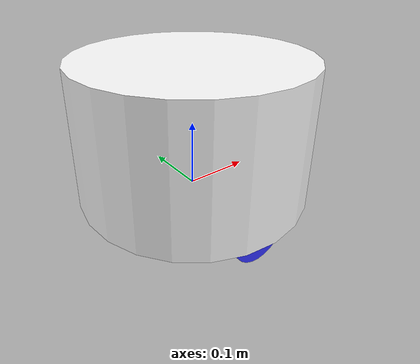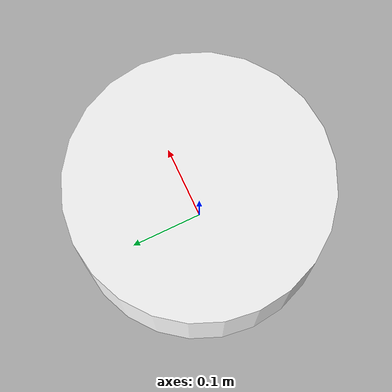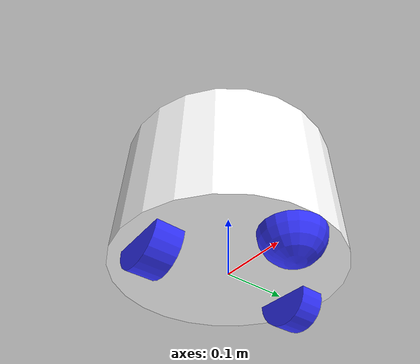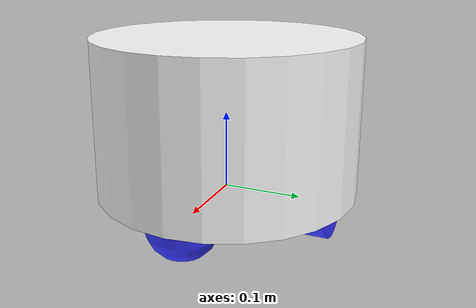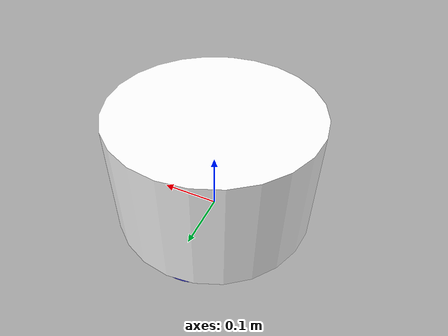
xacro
<?xml version="1.0"?>
<robot xmlns:xacro="http://www.ros.org/wiki/xacro" >

    <xacro:include filename="inertial_macros.xacro"/>

    <material name="white">
        <color rgba="1 1 1 1" />
    </material>

    <material name="orange">
        <color rgba="1 0.3 0.1 1"/>
    </material>

    <material name="blue">
        <color rgba="0.2 0.2 1 1"/>
    </material>

    <material name="black">
        <color rgba="0 0 0 1"/>
    </material>

    <!-- BASE LINK -->

    <link name="base_link">

    </link>

    <!-- CHASSIS LINK -->

    <joint name="chassis_joint" type="fixed">
        <parent link="base_link"/>
        <child link="chassis"/>
        <origin xyz="-0.170 0 0"/>
    </joint>

    <link name="chassis">
        <visual>
            <origin xyz="0.170 0 0.1"/>
            <geometry>
                <cylinder radius="0.170" length="0.2"/>
            </geometry>
            <material name="white"/>
        </visual>
        <collision>
            <origin xyz="0 0 0"/>
            <geometry>
                <cylinder radius="0.170" length="0.2"/>
            </geometry>
        </collision>
        <xacro:inertial_cylinder mass="3.9" length="0.170" radius="0.2">
            <origin xyz="0 0 0" rpy="0 0 0"/>
        </xacro:inertial_cylinder>
    </link>

    <gazebo reference="chassis">
        <material>Gazebo/White</material>
    </gazebo>

    <!-- LEFT WHEEL LINK -->

    <joint name="left_wheel_joint" type="continuous">
        <parent link="base_link"/>
        <child link="left_wheel"/>
        <origin xyz="0 0.125 0" rpy="-${pi/2} 0 0" />
        <axis xyz="0 0 1"/>
    </joint>

    <link name="left_wheel">
        <visual>
            <geometry>
                <cylinder radius="0.045" length="0.04"/>
            </geometry>
            <material name="blue"/>
        </visual>
        <collision>
            <geometry>
                <cylinder radius="0.045" length="0.04"/>
            </geometry>
        </collision>
        <xacro:inertial_cylinder mass="0.1" length="0.04" radius="0.045">
            <origin xyz="0 0 0" rpy="0 0 0"/>
        </xacro:inertial_cylinder>
    </link>

    <gazebo reference="left_wheel">
        <material>Gazebo/Blue</material>
    </gazebo>

    <!-- RIGHT WHEEL LINK -->

    <joint name="right_wheel_joint" type="continuous">
        <parent link="base_link"/>
        <child link="right_wheel"/>
        <origin xyz="0 -0.125 0" rpy="${pi/2} 0 0" />
        <axis xyz="0 0 -1"/>
    </joint>

    <link name="right_wheel">
        <visual>
            <geometry>
                <cylinder radius="0.045" length="0.04"/>
            </geometry>
            <material name="blue"/>
        </visual>
        <collision>
            <geometry>
                <cylinder radius="0.045" length="0.04"/>
            </geometry>
        </collision>
        <xacro:inertial_cylinder mass="0.1" length="0.04" radius="0.045">
            <origin xyz="0 0 0" rpy="0 0 0"/>
        </xacro:inertial_cylinder>
    </link>

    <gazebo reference="right_wheel">
        <material>Gazebo/Blue</material>
    </gazebo>

    <!-- CASTER WHEEL LINK -->

    <joint name="caster_wheel_joint" type="fixed">
        <parent link="chassis"/>
        <child link="caster_wheel"/>
        <origin xyz="0.295 0 0"/>
    </joint>

    <link name="caster_wheel">
        <visual>
            <geometry>
                <sphere radius="0.045"/>
            </geometry>
            <material name="blue"/>
        </visual>
        <collision>
            <geometry>
                <sphere radius="0.045"/>
            </geometry>
        </collision>
        <xacro:inertial_sphere mass="0.1" radius="0.045">
            <origin xyz="0 0 0" rpy="0 0 0"/>
        </xacro:inertial_sphere>
    </link>

    <gazebo reference="caster_wheel">
        <material>Gazebo/Blue</material>
        <mu1 value="0.001"/>
        <mu2 value="0.001"/>
    </gazebo>

</robot>
